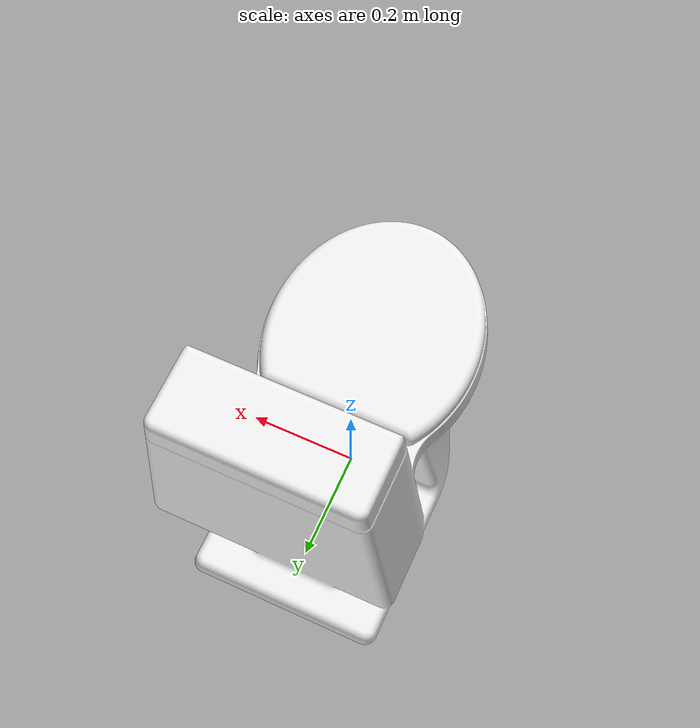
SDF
<?xml version ="1.0"?>
<sdf version="1.6">
  <model name="cummod">

    <link name="link">

      <inertial>
        <pose>0 0 0 0 0 0</pose>
        <mass>0.8</mass>
      </inertial>

      <collision name="colision1">
        <pose>0 0 0 0 0 0 </pose>
        <geometry>

          <mesh>
            <uri>model://cummod/meshes/cummod.dae</uri>

          </mesh>
        </geometry>

      </collision>

      <visual name="visual1">
        <cast_shadows>false</cast_shadows>
	<pose> 0 0 0 0 0 0</pose>
        <geometry>
          <mesh>
            <uri>model://cummod/meshes/cummod.dae</uri>

          </mesh>
        </geometry>
	<material>
	  <script>
	    <name>Gazebo/White</name>
	    <uri>file://media/materials/scripts/gazebo.material</uri>
	  </script>
	</material>
      </visual>

    </link>
  </model>
</sdf>
